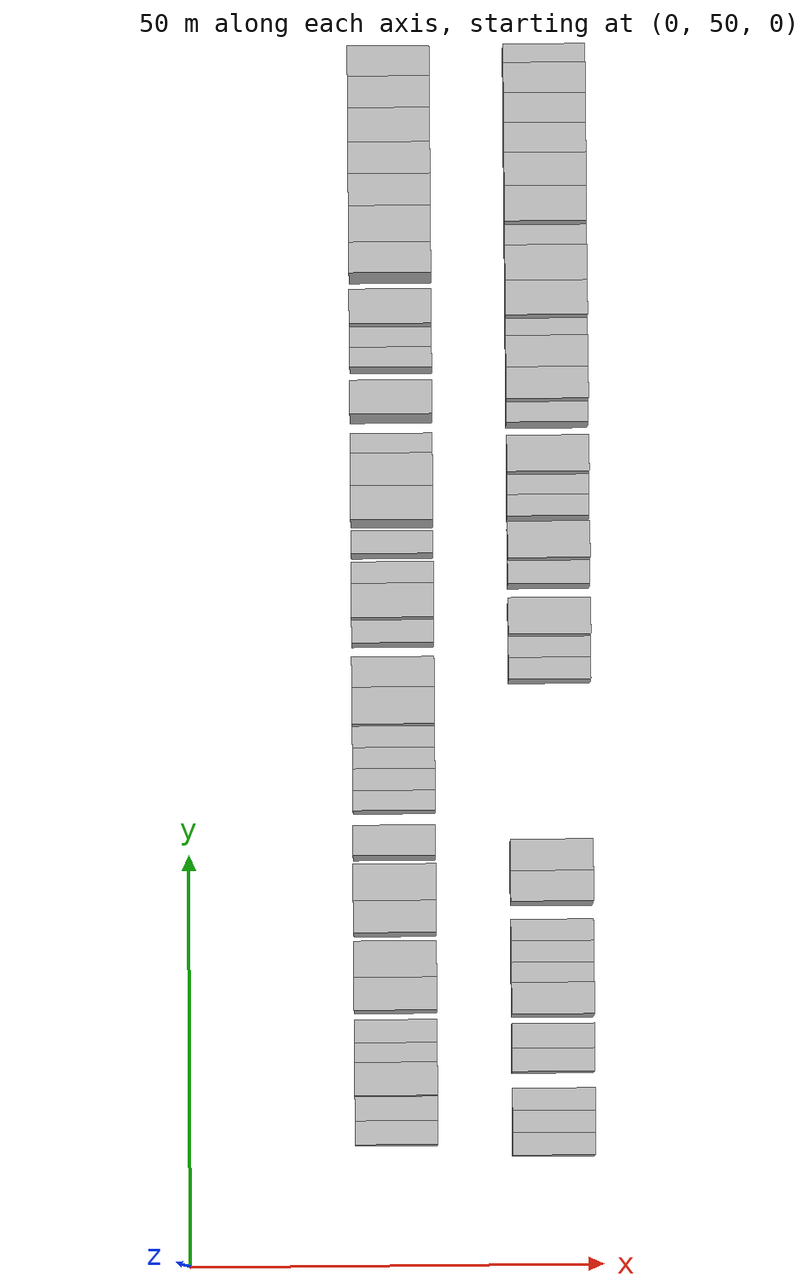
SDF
<sdf version="1.6">
 <world name="default">
  <model name="building_65">
   <static>1</static>
   <pose>25.0000 65.9351 0 0.000000 0.000000 0.000000</pose>
   <link name="link">
    <pose>0 0 3.00 0 0 0</pose>
    <collision name="collision"><geometry><box><size>10.0000 2.8809 6.0000</size></box></geometry></collision>
    <visual name="visual">
     <cast_shadows>0</cast_shadows>
     <geometry><box><size>10.0000 2.8809 6.0000</size></box></geometry>
     <material>
      <script>
       <uri>model://HANNAS_wall/materials/scripts</uri>
       <uri>model://HANNAS_wall/materials/textures</uri>
       <name>vrc/HANNAS_wall</name>
      </script>
     </material>
    </visual>
   </link>
  </model>
  <model name="building_66">
   <static>1</static>
   <pose>25.0000 68.8346 0 0.000000 0.000000 0.000000</pose>
   <link name="link">
    <pose>0 0 3.00 0 0 0</pose>
    <collision name="collision"><geometry><box><size>10.0000 2.9181 6.0000</size></box></geometry></collision>
    <visual name="visual">
     <cast_shadows>0</cast_shadows>
     <geometry><box><size>10.0000 2.9181 6.0000</size></box></geometry>
     <material>
      <script>
       <uri>model://HANNAS_wall/materials/scripts</uri>
       <uri>model://HANNAS_wall/materials/textures</uri>
       <name>vrc/HANNAS_wall</name>
      </script>
     </material>
    </visual>
   </link>
  </model>
  <model name="building_67">
   <static>1</static>
   <pose>25.0000 72.2965 0 0.000000 0.000000 0.000000</pose>
   <link name="link">
    <pose>0 0 4.50 0 0 0</pose>
    <collision name="collision"><geometry><box><size>10.0000 4.0057 9.0000</size></box></geometry></collision>
    <visual name="visual">
     <cast_shadows>0</cast_shadows>
     <geometry><box><size>10.0000 4.0057 9.0000</size></box></geometry>
     <material>
      <script>
       <uri>model://HANNAS_wall/materials/scripts</uri>
       <uri>model://HANNAS_wall/materials/textures</uri>
       <name>vrc/HANNAS_wall</name>
      </script>
     </material>
    </visual>
   </link>
  </model>
  <model name="building_68">
   <static>1</static>
   <pose>25.0000 75.5396 0 0.000000 0.000000 0.000000</pose>
   <link name="link">
    <pose>0 0 3.00 0 0 0</pose>
    <collision name="collision"><geometry><box><size>10.0000 2.4805 6.0000</size></box></geometry></collision>
    <visual name="visual">
     <cast_shadows>0</cast_shadows>
     <geometry><box><size>10.0000 2.4805 6.0000</size></box></geometry>
     <material>
      <script>
       <uri>model://HANNAS_wall/materials/scripts</uri>
       <uri>model://HANNAS_wall/materials/textures</uri>
       <name>vrc/HANNAS_wall</name>
      </script>
     </material>
    </visual>
   </link>
  </model>
  <model name="building_69">
   <static>1</static>
   <pose>25.0000 78.1669 0 0.000000 0.000000 0.000000</pose>
   <link name="link">
    <pose>0 0 3.00 0 0 0</pose>
    <collision name="collision"><geometry><box><size>10.0000 2.7742 6.0000</size></box></geometry></collision>
    <visual name="visual">
     <cast_shadows>0</cast_shadows>
     <geometry><box><size>10.0000 2.7742 6.0000</size></box></geometry>
     <material>
      <script>
       <uri>model://HANNAS_wall/materials/scripts</uri>
       <uri>model://HANNAS_wall/materials/textures</uri>
       <name>vrc/HANNAS_wall</name>
      </script>
     </material>
    </visual>
   </link>
  </model>
  <model name="building_70">
   <static>1</static>
   <pose>25.0000 82.5401 0 0.000000 0.000000 0.000000</pose>
   <link name="link">
    <pose>0 0 4.50 0 0 0</pose>
    <collision name="collision"><geometry><box><size>10.0000 3.9721 9.0000</size></box></geometry></collision>
    <visual name="visual">
     <cast_shadows>0</cast_shadows>
     <geometry><box><size>10.0000 3.9721 9.0000</size></box></geometry>
     <material>
      <script>
       <uri>model://HANNAS_wall/materials/scripts</uri>
       <uri>model://HANNAS_wall/materials/textures</uri>
       <name>vrc/HANNAS_wall</name>
      </script>
     </material>
    </visual>
   </link>
  </model>
  <model name="building_71">
   <static>1</static>
   <pose>25.0000 86.7129 0 0.000000 0.000000 0.000000</pose>
   <link name="link">
    <pose>0 0 4.50 0 0 0</pose>
    <collision name="collision"><geometry><box><size>10.0000 4.3736 9.0000</size></box></geometry></collision>
    <visual name="visual">
     <cast_shadows>0</cast_shadows>
     <geometry><box><size>10.0000 4.3736 9.0000</size></box></geometry>
     <material>
      <script>
       <uri>model://HANNAS_wall/materials/scripts</uri>
       <uri>model://HANNAS_wall/materials/textures</uri>
       <name>vrc/HANNAS_wall</name>
      </script>
     </material>
    </visual>
   </link>
  </model>
  <model name="building_72">
   <static>1</static>
   <pose>25.0000 91.8360 0 0.000000 0.000000 0.000000</pose>
   <link name="link">
    <pose>0 0 4.50 0 0 0</pose>
    <collision name="collision"><geometry><box><size>10.0000 3.8725 9.0000</size></box></geometry></collision>
    <visual name="visual">
     <cast_shadows>0</cast_shadows>
     <geometry><box><size>10.0000 3.8725 9.0000</size></box></geometry>
     <material>
      <script>
       <uri>model://HANNAS_wall/materials/scripts</uri>
       <uri>model://HANNAS_wall/materials/textures</uri>
       <name>vrc/HANNAS_wall</name>
      </script>
     </material>
    </visual>
   </link>
  </model>
  <model name="building_73">
   <static>1</static>
   <pose>25.0000 95.9816 0 0.000000 0.000000 0.000000</pose>
   <link name="link">
    <pose>0 0 4.50 0 0 0</pose>
    <collision name="collision"><geometry><box><size>10.0000 4.4187 9.0000</size></box></geometry></collision>
    <visual name="visual">
     <cast_shadows>0</cast_shadows>
     <geometry><box><size>10.0000 4.4187 9.0000</size></box></geometry>
     <material>
      <script>
       <uri>model://HANNAS_wall/materials/scripts</uri>
       <uri>model://HANNAS_wall/materials/textures</uri>
       <name>vrc/HANNAS_wall</name>
      </script>
     </material>
    </visual>
   </link>
  </model>
  <model name="building_74">
   <static>1</static>
   <pose>25.0000 101.0312 0 0.000000 0.000000 0.000000</pose>
   <link name="link">
    <pose>0 0 4.50 0 0 0</pose>
    <collision name="collision"><geometry><box><size>10.0000 3.6806 9.0000</size></box></geometry></collision>
    <visual name="visual">
     <cast_shadows>0</cast_shadows>
     <geometry><box><size>10.0000 3.6806 9.0000</size></box></geometry>
     <material>
      <script>
       <uri>model://HANNAS_wall/materials/scripts</uri>
       <uri>model://HANNAS_wall/materials/textures</uri>
       <name>vrc/HANNAS_wall</name>
      </script>
     </material>
    </visual>
   </link>
  </model>
  <model name="building_75">
   <static>1</static>
   <pose>25.0000 106.0870 0 0.000000 0.000000 0.000000</pose>
   <link name="link">
    <pose>0 0 3.00 0 0 0</pose>
    <collision name="collision"><geometry><box><size>10.0000 2.4309 6.0000</size></box></geometry></collision>
    <visual name="visual">
     <cast_shadows>0</cast_shadows>
     <geometry><box><size>10.0000 2.4309 6.0000</size></box></geometry>
     <material>
      <script>
       <uri>model://HANNAS_wall/materials/scripts</uri>
       <uri>model://HANNAS_wall/materials/textures</uri>
       <name>vrc/HANNAS_wall</name>
      </script>
     </material>
    </visual>
   </link>
  </model>
  <model name="building_76">
   <static>1</static>
   <pose>25.0000 108.6257 0 0.000000 0.000000 0.000000</pose>
   <link name="link">
    <pose>0 0 3.00 0 0 0</pose>
    <collision name="collision"><geometry><box><size>10.0000 2.6464 6.0000</size></box></geometry></collision>
    <visual name="visual">
     <cast_shadows>0</cast_shadows>
     <geometry><box><size>10.0000 2.6464 6.0000</size></box></geometry>
     <material>
      <script>
       <uri>model://HANNAS_wall/materials/scripts</uri>
       <uri>model://HANNAS_wall/materials/textures</uri>
       <name>vrc/HANNAS_wall</name>
      </script>
     </material>
    </visual>
   </link>
  </model>
  <model name="building_77">
   <static>1</static>
   <pose>25.0000 111.2392 0 0.000000 0.000000 0.000000</pose>
   <link name="link">
    <pose>0 0 3.00 0 0 0</pose>
    <collision name="collision"><geometry><box><size>10.0000 2.5808 6.0000</size></box></geometry></collision>
    <visual name="visual">
     <cast_shadows>0</cast_shadows>
     <geometry><box><size>10.0000 2.5808 6.0000</size></box></geometry>
     <material>
      <script>
       <uri>model://HANNAS_wall/materials/scripts</uri>
       <uri>model://HANNAS_wall/materials/textures</uri>
       <name>vrc/HANNAS_wall</name>
      </script>
     </material>
    </visual>
   </link>
  </model>
  <model name="building_78">
   <static>1</static>
   <pose>25.0000 113.8284 0 0.000000 0.000000 0.000000</pose>
   <link name="link">
    <pose>0 0 3.00 0 0 0</pose>
    <collision name="collision"><geometry><box><size>10.0000 2.5975 6.0000</size></box></geometry></collision>
    <visual name="visual">
     <cast_shadows>0</cast_shadows>
     <geometry><box><size>10.0000 2.5975 6.0000</size></box></geometry>
     <material>
      <script>
       <uri>model://HANNAS_wall/materials/scripts</uri>
       <uri>model://HANNAS_wall/materials/textures</uri>
       <name>vrc/HANNAS_wall</name>
      </script>
     </material>
    </visual>
   </link>
  </model>
  <model name="building_79">
   <static>1</static>
   <pose>25.0000 117.3661 0 0.000000 0.000000 0.000000</pose>
   <link name="link">
    <pose>0 0 4.50 0 0 0</pose>
    <collision name="collision"><geometry><box><size>10.0000 4.4780 9.0000</size></box></geometry></collision>
    <visual name="visual">
     <cast_shadows>0</cast_shadows>
     <geometry><box><size>10.0000 4.4780 9.0000</size></box></geometry>
     <material>
      <script>
       <uri>model://HANNAS_wall/materials/scripts</uri>
       <uri>model://HANNAS_wall/materials/textures</uri>
       <name>vrc/HANNAS_wall</name>
      </script>
     </material>
    </visual>
   </link>
  </model>
  <model name="building_80">
   <static>1</static>
   <pose>25.0000 121.4425 0 0.000000 0.000000 0.000000</pose>
   <link name="link">
    <pose>0 0 4.50 0 0 0</pose>
    <collision name="collision"><geometry><box><size>10.0000 3.6749 9.0000</size></box></geometry></collision>
    <visual name="visual">
     <cast_shadows>0</cast_shadows>
     <geometry><box><size>10.0000 3.6749 9.0000</size></box></geometry>
     <material>
      <script>
       <uri>model://HANNAS_wall/materials/scripts</uri>
       <uri>model://HANNAS_wall/materials/textures</uri>
       <name>vrc/HANNAS_wall</name>
      </script>
     </material>
    </visual>
   </link>
  </model>
  <model name="building_81">
   <static>1</static>
   <pose>25.0000 126.6723 0 0.000000 0.000000 0.000000</pose>
   <link name="link">
    <pose>0 0 3.00 0 0 0</pose>
    <collision name="collision"><geometry><box><size>10.0000 2.7845 6.0000</size></box></geometry></collision>
    <visual name="visual">
     <cast_shadows>0</cast_shadows>
     <geometry><box><size>10.0000 2.7845 6.0000</size></box></geometry>
     <material>
      <script>
       <uri>model://HANNAS_wall/materials/scripts</uri>
       <uri>model://HANNAS_wall/materials/textures</uri>
       <name>vrc/HANNAS_wall</name>
      </script>
     </material>
    </visual>
   </link>
  </model>
  <model name="building_82">
   <static>1</static>
   <pose>25.0000 130.1458 0 0.000000 0.000000 0.000000</pose>
   <link name="link">
    <pose>0 0 4.50 0 0 0</pose>
    <collision name="collision"><geometry><box><size>10.0000 4.1626 9.0000</size></box></geometry></collision>
    <visual name="visual">
     <cast_shadows>0</cast_shadows>
     <geometry><box><size>10.0000 4.1626 9.0000</size></box></geometry>
     <material>
      <script>
       <uri>model://HANNAS_wall/materials/scripts</uri>
       <uri>model://HANNAS_wall/materials/textures</uri>
       <name>vrc/HANNAS_wall</name>
      </script>
     </material>
    </visual>
   </link>
  </model>
  <model name="building_83">
   <static>1</static>
   <pose>25.0000 133.6976 0 0.000000 0.000000 0.000000</pose>
   <link name="link">
    <pose>0 0 3.00 0 0 0</pose>
    <collision name="collision"><geometry><box><size>10.0000 2.9409 6.0000</size></box></geometry></collision>
    <visual name="visual">
     <cast_shadows>0</cast_shadows>
     <geometry><box><size>10.0000 2.9409 6.0000</size></box></geometry>
     <material>
      <script>
       <uri>model://HANNAS_wall/materials/scripts</uri>
       <uri>model://HANNAS_wall/materials/textures</uri>
       <name>vrc/HANNAS_wall</name>
      </script>
     </material>
    </visual>
   </link>
  </model>
  <model name="building_84">
   <static>1</static>
   <pose>25.0000 137.5640 0 0.000000 0.000000 0.000000</pose>
   <link name="link">
    <pose>0 0 3.00 0 0 0</pose>
    <collision name="collision"><geometry><box><size>10.0000 2.7920 6.0000</size></box></geometry></collision>
    <visual name="visual">
     <cast_shadows>0</cast_shadows>
     <geometry><box><size>10.0000 2.7920 6.0000</size></box></geometry>
     <material>
      <script>
       <uri>model://HANNAS_wall/materials/scripts</uri>
       <uri>model://HANNAS_wall/materials/textures</uri>
       <name>vrc/HANNAS_wall</name>
      </script>
     </material>
    </visual>
   </link>
  </model>
  <model name="building_85">
   <static>1</static>
   <pose>25.0000 142.0333 0 0.000000 0.000000 0.000000</pose>
   <link name="link">
    <pose>0 0 4.50 0 0 0</pose>
    <collision name="collision"><geometry><box><size>10.0000 4.1465 9.0000</size></box></geometry></collision>
    <visual name="visual">
     <cast_shadows>0</cast_shadows>
     <geometry><box><size>10.0000 4.1465 9.0000</size></box></geometry>
     <material>
      <script>
       <uri>model://HANNAS_wall/materials/scripts</uri>
       <uri>model://HANNAS_wall/materials/textures</uri>
       <name>vrc/HANNAS_wall</name>
      </script>
     </material>
    </visual>
   </link>
  </model>
  <model name="building_86">
   <static>1</static>
   <pose>25.0000 146.1061 0 0.000000 0.000000 0.000000</pose>
   <link name="link">
    <pose>0 0 4.50 0 0 0</pose>
    <collision name="collision"><geometry><box><size>10.0000 3.9990 9.0000</size></box></geometry></collision>
    <visual name="visual">
     <cast_shadows>0</cast_shadows>
     <geometry><box><size>10.0000 3.9990 9.0000</size></box></geometry>
     <material>
      <script>
       <uri>model://HANNAS_wall/materials/scripts</uri>
       <uri>model://HANNAS_wall/materials/textures</uri>
       <name>vrc/HANNAS_wall</name>
      </script>
     </material>
    </visual>
   </link>
  </model>
  <model name="building_87">
   <static>1</static>
   <pose>25.0000 149.4916 0 0.000000 0.000000 0.000000</pose>
   <link name="link">
    <pose>0 0 3.00 0 0 0</pose>
    <collision name="collision"><geometry><box><size>10.0000 2.7720 6.0000</size></box></geometry></collision>
    <visual name="visual">
     <cast_shadows>0</cast_shadows>
     <geometry><box><size>10.0000 2.7720 6.0000</size></box></geometry>
     <material>
      <script>
       <uri>model://HANNAS_wall/materials/scripts</uri>
       <uri>model://HANNAS_wall/materials/textures</uri>
       <name>vrc/HANNAS_wall</name>
      </script>
     </material>
    </visual>
   </link>
  </model>
  <model name="building_88">
   <static>1</static>
   <pose>25.0000 154.9476 0 0.000000 0.000000 0.000000</pose>
   <link name="link">
    <pose>0 0 4.50 0 0 0</pose>
    <collision name="collision"><geometry><box><size>10.0000 4.1400 9.0000</size></box></geometry></collision>
    <visual name="visual">
     <cast_shadows>0</cast_shadows>
     <geometry><box><size>10.0000 4.1400 9.0000</size></box></geometry>
     <material>
      <script>
       <uri>model://HANNAS_wall/materials/scripts</uri>
       <uri>model://HANNAS_wall/materials/textures</uri>
       <name>vrc/HANNAS_wall</name>
      </script>
     </material>
    </visual>
   </link>
  </model>
  <model name="building_89">
   <static>1</static>
   <pose>25.0000 160.2522 0 0.000000 0.000000 0.000000</pose>
   <link name="link">
    <pose>0 0 3.00 0 0 0</pose>
    <collision name="collision"><geometry><box><size>10.0000 2.4693 6.0000</size></box></geometry></collision>
    <visual name="visual">
     <cast_shadows>0</cast_shadows>
     <geometry><box><size>10.0000 2.4693 6.0000</size></box></geometry>
     <material>
      <script>
       <uri>model://HANNAS_wall/materials/scripts</uri>
       <uri>model://HANNAS_wall/materials/textures</uri>
       <name>vrc/HANNAS_wall</name>
      </script>
     </material>
    </visual>
   </link>
  </model>
  <model name="building_90">
   <static>1</static>
   <pose>25.0000 162.7166 0 0.000000 0.000000 0.000000</pose>
   <link name="link">
    <pose>0 0 3.00 0 0 0</pose>
    <collision name="collision"><geometry><box><size>10.0000 2.4597 6.0000</size></box></geometry></collision>
    <visual name="visual">
     <cast_shadows>0</cast_shadows>
     <geometry><box><size>10.0000 2.4597 6.0000</size></box></geometry>
     <material>
      <script>
       <uri>model://HANNAS_wall/materials/scripts</uri>
       <uri>model://HANNAS_wall/materials/textures</uri>
       <name>vrc/HANNAS_wall</name>
      </script>
     </material>
    </visual>
   </link>
  </model>
  <model name="building_91">
   <static>1</static>
   <pose>25.0000 166.0668 0 0.000000 0.000000 0.000000</pose>
   <link name="link">
    <pose>0 0 4.50 0 0 0</pose>
    <collision name="collision"><geometry><box><size>10.0000 4.2406 9.0000</size></box></geometry></collision>
    <visual name="visual">
     <cast_shadows>0</cast_shadows>
     <geometry><box><size>10.0000 4.2406 9.0000</size></box></geometry>
     <material>
      <script>
       <uri>model://HANNAS_wall/materials/scripts</uri>
       <uri>model://HANNAS_wall/materials/textures</uri>
       <name>vrc/HANNAS_wall</name>
      </script>
     </material>
    </visual>
   </link>
  </model>
  <model name="building_92">
   <static>1</static>
   <pose>25.0000 172.0715 0 0.000000 0.000000 0.000000</pose>
   <link name="link">
    <pose>0 0 4.50 0 0 0</pose>
    <collision name="collision"><geometry><box><size>10.0000 3.7690 9.0000</size></box></geometry></collision>
    <visual name="visual">
     <cast_shadows>0</cast_shadows>
     <geometry><box><size>10.0000 3.7690 9.0000</size></box></geometry>
     <material>
      <script>
       <uri>model://HANNAS_wall/materials/scripts</uri>
       <uri>model://HANNAS_wall/materials/textures</uri>
       <name>vrc/HANNAS_wall</name>
      </script>
     </material>
    </visual>
   </link>
  </model>
  <model name="building_93">
   <static>1</static>
   <pose>25.0000 176.1982 0 0.000000 0.000000 0.000000</pose>
   <link name="link">
    <pose>0 0 4.50 0 0 0</pose>
    <collision name="collision"><geometry><box><size>10.0000 4.4844 9.0000</size></box></geometry></collision>
    <visual name="visual">
     <cast_shadows>0</cast_shadows>
     <geometry><box><size>10.0000 4.4844 9.0000</size></box></geometry>
     <material>
      <script>
       <uri>model://HANNAS_wall/materials/scripts</uri>
       <uri>model://HANNAS_wall/materials/textures</uri>
       <name>vrc/HANNAS_wall</name>
      </script>
     </material>
    </visual>
   </link>
  </model>
  <model name="building_94">
   <static>1</static>
   <pose>25.0000 180.4055 0 0.000000 0.000000 0.000000</pose>
   <link name="link">
    <pose>0 0 4.50 0 0 0</pose>
    <collision name="collision"><geometry><box><size>10.0000 3.9302 9.0000</size></box></geometry></collision>
    <visual name="visual">
     <cast_shadows>0</cast_shadows>
     <geometry><box><size>10.0000 3.9302 9.0000</size></box></geometry>
     <material>
      <script>
       <uri>model://HANNAS_wall/materials/scripts</uri>
       <uri>model://HANNAS_wall/materials/textures</uri>
       <name>vrc/HANNAS_wall</name>
      </script>
     </material>
    </visual>
   </link>
  </model>
  <model name="building_95">
   <static>1</static>
   <pose>25.0000 184.3220 0 0.000000 0.000000 0.000000</pose>
   <link name="link">
    <pose>0 0 4.50 0 0 0</pose>
    <collision name="collision"><geometry><box><size>10.0000 3.9027 9.0000</size></box></geometry></collision>
    <visual name="visual">
     <cast_shadows>0</cast_shadows>
     <geometry><box><size>10.0000 3.9027 9.0000</size></box></geometry>
     <material>
      <script>
       <uri>model://HANNAS_wall/materials/scripts</uri>
       <uri>model://HANNAS_wall/materials/textures</uri>
       <name>vrc/HANNAS_wall</name>
      </script>
     </material>
    </visual>
   </link>
  </model>
  <model name="building_96">
   <static>1</static>
   <pose>25.0000 188.3840 0 0.000000 0.000000 0.000000</pose>
   <link name="link">
    <pose>0 0 4.50 0 0 0</pose>
    <collision name="collision"><geometry><box><size>10.0000 4.2213 9.0000</size></box></geometry></collision>
    <visual name="visual">
     <cast_shadows>0</cast_shadows>
     <geometry><box><size>10.0000 4.2213 9.0000</size></box></geometry>
     <material>
      <script>
       <uri>model://HANNAS_wall/materials/scripts</uri>
       <uri>model://HANNAS_wall/materials/textures</uri>
       <name>vrc/HANNAS_wall</name>
      </script>
     </material>
    </visual>
   </link>
  </model>
  <model name="building_97">
   <static>1</static>
   <pose>25.0000 192.4436 0 0.000000 0.000000 0.000000</pose>
   <link name="link">
    <pose>0 0 4.50 0 0 0</pose>
    <collision name="collision"><geometry><box><size>10.0000 3.8978 9.0000</size></box></geometry></collision>
    <visual name="visual">
     <cast_shadows>0</cast_shadows>
     <geometry><box><size>10.0000 3.8978 9.0000</size></box></geometry>
     <material>
      <script>
       <uri>model://HANNAS_wall/materials/scripts</uri>
       <uri>model://HANNAS_wall/materials/textures</uri>
       <name>vrc/HANNAS_wall</name>
      </script>
     </material>
    </visual>
   </link>
  </model>
  <model name="building_98">
   <static>1</static>
   <pose>25.0000 196.2651 0 0.000000 0.000000 0.000000</pose>
   <link name="link">
    <pose>0 0 4.50 0 0 0</pose>
    <collision name="collision"><geometry><box><size>10.0000 3.7453 9.0000</size></box></geometry></collision>
    <visual name="visual">
     <cast_shadows>0</cast_shadows>
     <geometry><box><size>10.0000 3.7453 9.0000</size></box></geometry>
     <material>
      <script>
       <uri>model://HANNAS_wall/materials/scripts</uri>
       <uri>model://HANNAS_wall/materials/textures</uri>
       <name>vrc/HANNAS_wall</name>
      </script>
     </material>
    </visual>
   </link>
  </model>
  <model name="building_166">
   <static>1</static>
   <pose>44.0000 64.4476 0 0.000000 0.000000 0.000000</pose>
   <link name="link">
    <pose>0 0 3.00 0 0 0</pose>
    <collision name="collision"><geometry><box><size>10.0000 2.7195 6.0000</size></box></geometry></collision>
    <visual name="visual">
     <cast_shadows>0</cast_shadows>
     <geometry><box><size>10.0000 2.7195 6.0000</size></box></geometry>
     <material>
      <script>
       <uri>model://HANNAS_wall/materials/scripts</uri>
       <uri>model://HANNAS_wall/materials/textures</uri>
       <name>vrc/HANNAS_wall</name>
      </script>
     </material>
    </visual>
   </link>
  </model>
  <model name="building_167">
   <static>1</static>
   <pose>44.0000 67.1397 0 0.000000 0.000000 0.000000</pose>
   <link name="link">
    <pose>0 0 3.00 0 0 0</pose>
    <collision name="collision"><geometry><box><size>10.0000 2.6647 6.0000</size></box></geometry></collision>
    <visual name="visual">
     <cast_shadows>0</cast_shadows>
     <geometry><box><size>10.0000 2.6647 6.0000</size></box></geometry>
     <material>
      <script>
       <uri>model://HANNAS_wall/materials/scripts</uri>
       <uri>model://HANNAS_wall/materials/textures</uri>
       <name>vrc/HANNAS_wall</name>
      </script>
     </material>
    </visual>
   </link>
  </model>
  <model name="building_168">
   <static>1</static>
   <pose>44.0000 69.8182 0 0.000000 0.000000 0.000000</pose>
   <link name="link">
    <pose>0 0 3.00 0 0 0</pose>
    <collision name="collision"><geometry><box><size>10.0000 2.6923 6.0000</size></box></geometry></collision>
    <visual name="visual">
     <cast_shadows>0</cast_shadows>
     <geometry><box><size>10.0000 2.6923 6.0000</size></box></geometry>
     <material>
      <script>
       <uri>model://HANNAS_wall/materials/scripts</uri>
       <uri>model://HANNAS_wall/materials/textures</uri>
       <name>vrc/HANNAS_wall</name>
      </script>
     </material>
    </visual>
   </link>
  </model>
  <model name="building_169">
   <static>1</static>
   <pose>44.0000 74.5694 0 0.000000 0.000000 0.000000</pose>
   <link name="link">
    <pose>0 0 3.00 0 0 0</pose>
    <collision name="collision"><geometry><box><size>10.0000 2.8102 6.0000</size></box></geometry></collision>
    <visual name="visual">
     <cast_shadows>0</cast_shadows>
     <geometry><box><size>10.0000 2.8102 6.0000</size></box></geometry>
     <material>
      <script>
       <uri>model://HANNAS_wall/materials/scripts</uri>
       <uri>model://HANNAS_wall/materials/textures</uri>
       <name>vrc/HANNAS_wall</name>
      </script>
     </material>
    </visual>
   </link>
  </model>
  <model name="building_170">
   <static>1</static>
   <pose>44.0000 77.4648 0 0.000000 0.000000 0.000000</pose>
   <link name="link">
    <pose>0 0 3.00 0 0 0</pose>
    <collision name="collision"><geometry><box><size>10.0000 2.9805 6.0000</size></box></geometry></collision>
    <visual name="visual">
     <cast_shadows>0</cast_shadows>
     <geometry><box><size>10.0000 2.9805 6.0000</size></box></geometry>
     <material>
      <script>
       <uri>model://HANNAS_wall/materials/scripts</uri>
       <uri>model://HANNAS_wall/materials/textures</uri>
       <name>vrc/HANNAS_wall</name>
      </script>
     </material>
    </visual>
   </link>
  </model>
  <model name="building_171">
   <static>1</static>
   <pose>44.0000 81.8598 0 0.000000 0.000000 0.000000</pose>
   <link name="link">
    <pose>0 0 4.50 0 0 0</pose>
    <collision name="collision"><geometry><box><size>10.0000 3.8096 9.0000</size></box></geometry></collision>
    <visual name="visual">
     <cast_shadows>0</cast_shadows>
     <geometry><box><size>10.0000 3.8096 9.0000</size></box></geometry>
     <material>
      <script>
       <uri>model://HANNAS_wall/materials/scripts</uri>
       <uri>model://HANNAS_wall/materials/textures</uri>
       <name>vrc/HANNAS_wall</name>
      </script>
     </material>
    </visual>
   </link>
  </model>
  <model name="building_172">
   <static>1</static>
   <pose>44.0000 85.0547 0 0.000000 0.000000 0.000000</pose>
   <link name="link">
    <pose>0 0 3.00 0 0 0</pose>
    <collision name="collision"><geometry><box><size>10.0000 2.5801 6.0000</size></box></geometry></collision>
    <visual name="visual">
     <cast_shadows>0</cast_shadows>
     <geometry><box><size>10.0000 2.5801 6.0000</size></box></geometry>
     <material>
      <script>
       <uri>model://HANNAS_wall/materials/scripts</uri>
       <uri>model://HANNAS_wall/materials/textures</uri>
       <name>vrc/HANNAS_wall</name>
      </script>
     </material>
    </visual>
   </link>
  </model>
  <model name="building_173">
   <static>1</static>
   <pose>44.0000 87.6445 0 0.000000 0.000000 0.000000</pose>
   <link name="link">
    <pose>0 0 3.00 0 0 0</pose>
    <collision name="collision"><geometry><box><size>10.0000 2.5996 6.0000</size></box></geometry></collision>
    <visual name="visual">
     <cast_shadows>0</cast_shadows>
     <geometry><box><size>10.0000 2.5996 6.0000</size></box></geometry>
     <material>
      <script>
       <uri>model://HANNAS_wall/materials/scripts</uri>
       <uri>model://HANNAS_wall/materials/textures</uri>
       <name>vrc/HANNAS_wall</name>
      </script>
     </material>
    </visual>
   </link>
  </model>
  <model name="building_174">
   <static>1</static>
   <pose>44.0000 90.2451 0 0.000000 0.000000 0.000000</pose>
   <link name="link">
    <pose>0 0 3.00 0 0 0</pose>
    <collision name="collision"><geometry><box><size>10.0000 2.6017 6.0000</size></box></geometry></collision>
    <visual name="visual">
     <cast_shadows>0</cast_shadows>
     <geometry><box><size>10.0000 2.6017 6.0000</size></box></geometry>
     <material>
      <script>
       <uri>model://HANNAS_wall/materials/scripts</uri>
       <uri>model://HANNAS_wall/materials/textures</uri>
       <name>vrc/HANNAS_wall</name>
      </script>
     </material>
    </visual>
   </link>
  </model>
  <model name="building_175">
   <static>1</static>
   <pose>44.0000 95.3914 0 0.000000 0.000000 0.000000</pose>
   <link name="link">
    <pose>0 0 4.50 0 0 0</pose>
    <collision name="collision"><geometry><box><size>10.0000 3.6908 9.0000</size></box></geometry></collision>
    <visual name="visual">
     <cast_shadows>0</cast_shadows>
     <geometry><box><size>10.0000 3.6908 9.0000</size></box></geometry>
     <material>
      <script>
       <uri>model://HANNAS_wall/materials/scripts</uri>
       <uri>model://HANNAS_wall/materials/textures</uri>
       <name>vrc/HANNAS_wall</name>
      </script>
     </material>
    </visual>
   </link>
  </model>
  <model name="building_176">
   <static>1</static>
   <pose>44.0000 99.1363 0 0.000000 0.000000 0.000000</pose>
   <link name="link">
    <pose>0 0 4.50 0 0 0</pose>
    <collision name="collision"><geometry><box><size>10.0000 3.7989 9.0000</size></box></geometry></collision>
    <visual name="visual">
     <cast_shadows>0</cast_shadows>
     <geometry><box><size>10.0000 3.7989 9.0000</size></box></geometry>
     <material>
      <script>
       <uri>model://HANNAS_wall/materials/scripts</uri>
       <uri>model://HANNAS_wall/materials/textures</uri>
       <name>vrc/HANNAS_wall</name>
      </script>
     </material>
    </visual>
   </link>
  </model>
  <model name="building_177">
   <static>1</static>
   <pose>44.0000 122.0206 0 0.000000 0.000000 0.000000</pose>
   <link name="link">
    <pose>0 0 3.00 0 0 0</pose>
    <collision name="collision"><geometry><box><size>10.0000 2.6566 6.0000</size></box></geometry></collision>
    <visual name="visual">
     <cast_shadows>0</cast_shadows>
     <geometry><box><size>10.0000 2.6566 6.0000</size></box></geometry>
     <material>
      <script>
       <uri>model://HANNAS_wall/materials/scripts</uri>
       <uri>model://HANNAS_wall/materials/textures</uri>
       <name>vrc/HANNAS_wall</name>
      </script>
     </material>
    </visual>
   </link>
  </model>
  <model name="building_178">
   <static>1</static>
   <pose>44.0000 124.6263 0 0.000000 0.000000 0.000000</pose>
   <link name="link">
    <pose>0 0 3.00 0 0 0</pose>
    <collision name="collision"><geometry><box><size>10.0000 2.5549 6.0000</size></box></geometry></collision>
    <visual name="visual">
     <cast_shadows>0</cast_shadows>
     <geometry><box><size>10.0000 2.5549 6.0000</size></box></geometry>
     <material>
      <script>
       <uri>model://HANNAS_wall/materials/scripts</uri>
       <uri>model://HANNAS_wall/materials/textures</uri>
       <name>vrc/HANNAS_wall</name>
      </script>
     </material>
    </visual>
   </link>
  </model>
  <model name="building_179">
   <static>1</static>
   <pose>44.0000 128.1211 0 0.000000 0.000000 0.000000</pose>
   <link name="link">
    <pose>0 0 4.50 0 0 0</pose>
    <collision name="collision"><geometry><box><size>10.0000 4.4346 9.0000</size></box></geometry></collision>
    <visual name="visual">
     <cast_shadows>0</cast_shadows>
     <geometry><box><size>10.0000 4.4346 9.0000</size></box></geometry>
     <material>
      <script>
       <uri>model://HANNAS_wall/materials/scripts</uri>
       <uri>model://HANNAS_wall/materials/textures</uri>
       <name>vrc/HANNAS_wall</name>
      </script>
     </material>
    </visual>
   </link>
  </model>
  <model name="building_180">
   <static>1</static>
   <pose>44.0000 133.7586 0 0.000000 0.000000 0.000000</pose>
   <link name="link">
    <pose>0 0 3.00 0 0 0</pose>
    <collision name="collision"><geometry><box><size>10.0000 2.8403 6.0000</size></box></geometry></collision>
    <visual name="visual">
     <cast_shadows>0</cast_shadows>
     <geometry><box><size>10.0000 2.8403 6.0000</size></box></geometry>
     <material>
      <script>
       <uri>model://HANNAS_wall/materials/scripts</uri>
       <uri>model://HANNAS_wall/materials/textures</uri>
       <name>vrc/HANNAS_wall</name>
      </script>
     </material>
    </visual>
   </link>
  </model>
  <model name="building_181">
   <static>1</static>
   <pose>44.0000 137.4089 0 0.000000 0.000000 0.000000</pose>
   <link name="link">
    <pose>0 0 4.50 0 0 0</pose>
    <collision name="collision"><geometry><box><size>10.0000 4.4603 9.0000</size></box></geometry></collision>
    <visual name="visual">
     <cast_shadows>0</cast_shadows>
     <geometry><box><size>10.0000 4.4603 9.0000</size></box></geometry>
     <material>
      <script>
       <uri>model://HANNAS_wall/materials/scripts</uri>
       <uri>model://HANNAS_wall/materials/textures</uri>
       <name>vrc/HANNAS_wall</name>
      </script>
     </material>
    </visual>
   </link>
  </model>
  <model name="building_182">
   <static>1</static>
   <pose>44.0000 141.9500 0 0.000000 0.000000 0.000000</pose>
   <link name="link">
    <pose>0 0 3.00 0 0 0</pose>
    <collision name="collision"><geometry><box><size>10.0000 2.6220 6.0000</size></box></geometry></collision>
    <visual name="visual">
     <cast_shadows>0</cast_shadows>
     <geometry><box><size>10.0000 2.6220 6.0000</size></box></geometry>
     <material>
      <script>
       <uri>model://HANNAS_wall/materials/scripts</uri>
       <uri>model://HANNAS_wall/materials/textures</uri>
       <name>vrc/HANNAS_wall</name>
      </script>
     </material>
    </visual>
   </link>
  </model>
  <model name="building_183">
   <static>1</static>
   <pose>44.0000 144.4842 0 0.000000 0.000000 0.000000</pose>
   <link name="link">
    <pose>0 0 3.00 0 0 0</pose>
    <collision name="collision"><geometry><box><size>10.0000 2.4462 6.0000</size></box></geometry></collision>
    <visual name="visual">
     <cast_shadows>0</cast_shadows>
     <geometry><box><size>10.0000 2.4462 6.0000</size></box></geometry>
     <material>
      <script>
       <uri>model://HANNAS_wall/materials/scripts</uri>
       <uri>model://HANNAS_wall/materials/textures</uri>
       <name>vrc/HANNAS_wall</name>
      </script>
     </material>
    </visual>
   </link>
  </model>
  <model name="building_184">
   <static>1</static>
   <pose>44.0000 147.9230 0 0.000000 0.000000 0.000000</pose>
   <link name="link">
    <pose>0 0 4.50 0 0 0</pose>
    <collision name="collision"><geometry><box><size>10.0000 4.4315 9.0000</size></box></geometry></collision>
    <visual name="visual">
     <cast_shadows>0</cast_shadows>
     <geometry><box><size>10.0000 4.4315 9.0000</size></box></geometry>
     <material>
      <script>
       <uri>model://HANNAS_wall/materials/scripts</uri>
       <uri>model://HANNAS_wall/materials/textures</uri>
       <name>vrc/HANNAS_wall</name>
      </script>
     </material>
    </visual>
   </link>
  </model>
  <model name="building_185">
   <static>1</static>
   <pose>44.0000 153.3790 0 0.000000 0.000000 0.000000</pose>
   <link name="link">
    <pose>0 0 3.00 0 0 0</pose>
    <collision name="collision"><geometry><box><size>10.0000 2.4804 6.0000</size></box></geometry></collision>
    <visual name="visual">
     <cast_shadows>0</cast_shadows>
     <geometry><box><size>10.0000 2.4804 6.0000</size></box></geometry>
     <material>
      <script>
       <uri>model://HANNAS_wall/materials/scripts</uri>
       <uri>model://HANNAS_wall/materials/textures</uri>
       <name>vrc/HANNAS_wall</name>
      </script>
     </material>
    </visual>
   </link>
  </model>
  <model name="building_186">
   <static>1</static>
   <pose>44.0000 156.5613 0 0.000000 0.000000 0.000000</pose>
   <link name="link">
    <pose>0 0 4.50 0 0 0</pose>
    <collision name="collision"><geometry><box><size>10.0000 3.8842 9.0000</size></box></geometry></collision>
    <visual name="visual">
     <cast_shadows>0</cast_shadows>
     <geometry><box><size>10.0000 3.8842 9.0000</size></box></geometry>
     <material>
      <script>
       <uri>model://HANNAS_wall/materials/scripts</uri>
       <uri>model://HANNAS_wall/materials/textures</uri>
       <name>vrc/HANNAS_wall</name>
      </script>
     </material>
    </visual>
   </link>
  </model>
  <model name="building_187">
   <static>1</static>
   <pose>44.0000 160.4291 0 0.000000 0.000000 0.000000</pose>
   <link name="link">
    <pose>0 0 4.50 0 0 0</pose>
    <collision name="collision"><geometry><box><size>10.0000 3.8515 9.0000</size></box></geometry></collision>
    <visual name="visual">
     <cast_shadows>0</cast_shadows>
     <geometry><box><size>10.0000 3.8515 9.0000</size></box></geometry>
     <material>
      <script>
       <uri>model://HANNAS_wall/materials/scripts</uri>
       <uri>model://HANNAS_wall/materials/textures</uri>
       <name>vrc/HANNAS_wall</name>
      </script>
     </material>
    </visual>
   </link>
  </model>
  <model name="building_188">
   <static>1</static>
   <pose>44.0000 163.6203 0 0.000000 0.000000 0.000000</pose>
   <link name="link">
    <pose>0 0 3.00 0 0 0</pose>
    <collision name="collision"><geometry><box><size>10.0000 2.5309 6.0000</size></box></geometry></collision>
    <visual name="visual">
     <cast_shadows>0</cast_shadows>
     <geometry><box><size>10.0000 2.5309 6.0000</size></box></geometry>
     <material>
      <script>
       <uri>model://HANNAS_wall/materials/scripts</uri>
       <uri>model://HANNAS_wall/materials/textures</uri>
       <name>vrc/HANNAS_wall</name>
      </script>
     </material>
    </visual>
   </link>
  </model>
  <model name="building_189">
   <static>1</static>
   <pose>44.0000 167.0014 0 0.000000 0.000000 0.000000</pose>
   <link name="link">
    <pose>0 0 4.50 0 0 0</pose>
    <collision name="collision"><geometry><box><size>10.0000 4.2313 9.0000</size></box></geometry></collision>
    <visual name="visual">
     <cast_shadows>0</cast_shadows>
     <geometry><box><size>10.0000 4.2313 9.0000</size></box></geometry>
     <material>
      <script>
       <uri>model://HANNAS_wall/materials/scripts</uri>
       <uri>model://HANNAS_wall/materials/textures</uri>
       <name>vrc/HANNAS_wall</name>
      </script>
     </material>
    </visual>
   </link>
  </model>
  <model name="building_190">
   <static>1</static>
   <pose>44.0000 171.2912 0 0.000000 0.000000 0.000000</pose>
   <link name="link">
    <pose>0 0 4.50 0 0 0</pose>
    <collision name="collision"><geometry><box><size>10.0000 4.3483 9.0000</size></box></geometry></collision>
    <visual name="visual">
     <cast_shadows>0</cast_shadows>
     <geometry><box><size>10.0000 4.3483 9.0000</size></box></geometry>
     <material>
      <script>
       <uri>model://HANNAS_wall/materials/scripts</uri>
       <uri>model://HANNAS_wall/materials/textures</uri>
       <name>vrc/HANNAS_wall</name>
      </script>
     </material>
    </visual>
   </link>
  </model>
  <model name="building_191">
   <static>1</static>
   <pose>44.0000 174.9358 0 0.000000 0.000000 0.000000</pose>
   <link name="link">
    <pose>0 0 3.00 0 0 0</pose>
    <collision name="collision"><geometry><box><size>10.0000 2.9409 6.0000</size></box></geometry></collision>
    <visual name="visual">
     <cast_shadows>0</cast_shadows>
     <geometry><box><size>10.0000 2.9409 6.0000</size></box></geometry>
     <material>
      <script>
       <uri>model://HANNAS_wall/materials/scripts</uri>
       <uri>model://HANNAS_wall/materials/textures</uri>
       <name>vrc/HANNAS_wall</name>
      </script>
     </material>
    </visual>
   </link>
  </model>
  <model name="building_192">
   <static>1</static>
   <pose>44.0000 178.5692 0 0.000000 0.000000 0.000000</pose>
   <link name="link">
    <pose>0 0 4.50 0 0 0</pose>
    <collision name="collision"><geometry><box><size>10.0000 4.3258 9.0000</size></box></geometry></collision>
    <visual name="visual">
     <cast_shadows>0</cast_shadows>
     <geometry><box><size>10.0000 4.3258 9.0000</size></box></geometry>
     <material>
      <script>
       <uri>model://HANNAS_wall/materials/scripts</uri>
       <uri>model://HANNAS_wall/materials/textures</uri>
       <name>vrc/HANNAS_wall</name>
      </script>
     </material>
    </visual>
   </link>
  </model>
  <model name="building_193">
   <static>1</static>
   <pose>44.0000 182.7842 0 0.000000 0.000000 0.000000</pose>
   <link name="link">
    <pose>0 0 4.50 0 0 0</pose>
    <collision name="collision"><geometry><box><size>10.0000 4.1042 9.0000</size></box></geometry></collision>
    <visual name="visual">
     <cast_shadows>0</cast_shadows>
     <geometry><box><size>10.0000 4.1042 9.0000</size></box></geometry>
     <material>
      <script>
       <uri>model://HANNAS_wall/materials/scripts</uri>
       <uri>model://HANNAS_wall/materials/textures</uri>
       <name>vrc/HANNAS_wall</name>
      </script>
     </material>
    </visual>
   </link>
  </model>
  <model name="building_194">
   <static>1</static>
   <pose>44.0000 186.6655 0 0.000000 0.000000 0.000000</pose>
   <link name="link">
    <pose>0 0 4.50 0 0 0</pose>
    <collision name="collision"><geometry><box><size>10.0000 3.6585 9.0000</size></box></geometry></collision>
    <visual name="visual">
     <cast_shadows>0</cast_shadows>
     <geometry><box><size>10.0000 3.6585 9.0000</size></box></geometry>
     <material>
      <script>
       <uri>model://HANNAS_wall/materials/scripts</uri>
       <uri>model://HANNAS_wall/materials/textures</uri>
       <name>vrc/HANNAS_wall</name>
      </script>
     </material>
    </visual>
   </link>
  </model>
  <model name="building_195">
   <static>1</static>
   <pose>44.0000 190.3406 0 0.000000 0.000000 0.000000</pose>
   <link name="link">
    <pose>0 0 4.50 0 0 0</pose>
    <collision name="collision"><geometry><box><size>10.0000 3.6917 9.0000</size></box></geometry></collision>
    <visual name="visual">
     <cast_shadows>0</cast_shadows>
     <geometry><box><size>10.0000 3.6917 9.0000</size></box></geometry>
     <material>
      <script>
       <uri>model://HANNAS_wall/materials/scripts</uri>
       <uri>model://HANNAS_wall/materials/textures</uri>
       <name>vrc/HANNAS_wall</name>
      </script>
     </material>
    </visual>
   </link>
  </model>
  <model name="building_196">
   <static>1</static>
   <pose>44.0000 194.0587 0 0.000000 0.000000 0.000000</pose>
   <link name="link">
    <pose>0 0 4.50 0 0 0</pose>
    <collision name="collision"><geometry><box><size>10.0000 3.7444 9.0000</size></box></geometry></collision>
    <visual name="visual">
     <cast_shadows>0</cast_shadows>
     <geometry><box><size>10.0000 3.7444 9.0000</size></box></geometry>
     <material>
      <script>
       <uri>model://HANNAS_wall/materials/scripts</uri>
       <uri>model://HANNAS_wall/materials/textures</uri>
       <name>vrc/HANNAS_wall</name>
      </script>
     </material>
    </visual>
   </link>
  </model>
  <model name="building_197">
   <static>1</static>
   <pose>44.0000 197.3521 0 0.000000 0.000000 0.000000</pose>
   <link name="link">
    <pose>0 0 3.00 0 0 0</pose>
    <collision name="collision"><geometry><box><size>10.0000 2.8425 6.0000</size></box></geometry></collision>
    <visual name="visual">
     <cast_shadows>0</cast_shadows>
     <geometry><box><size>10.0000 2.8425 6.0000</size></box></geometry>
     <material>
      <script>
       <uri>model://HANNAS_wall/materials/scripts</uri>
       <uri>model://HANNAS_wall/materials/textures</uri>
       <name>vrc/HANNAS_wall</name>
      </script>
     </material>
    </visual>
   </link>
  </model>
 </world>
</sdf>
